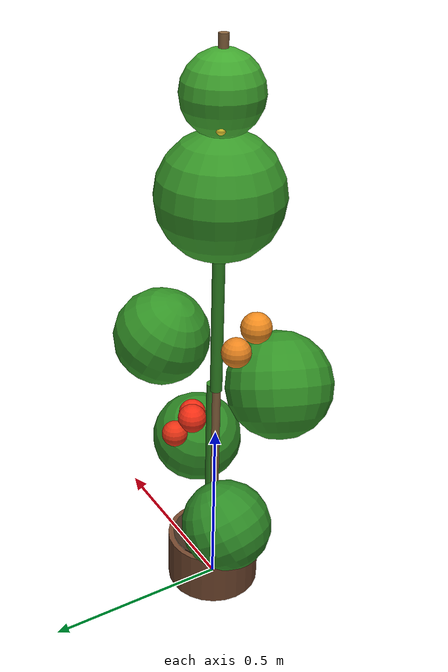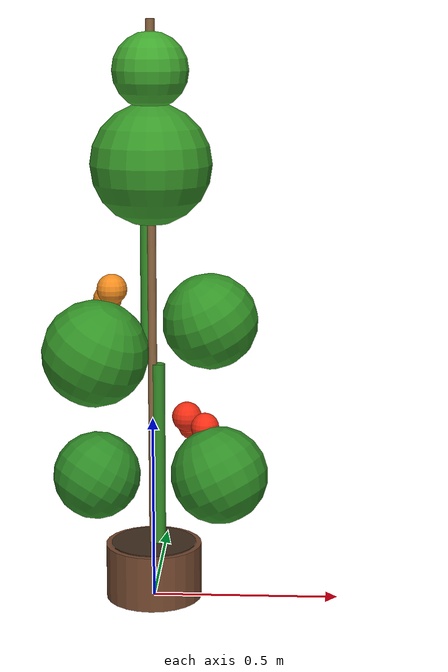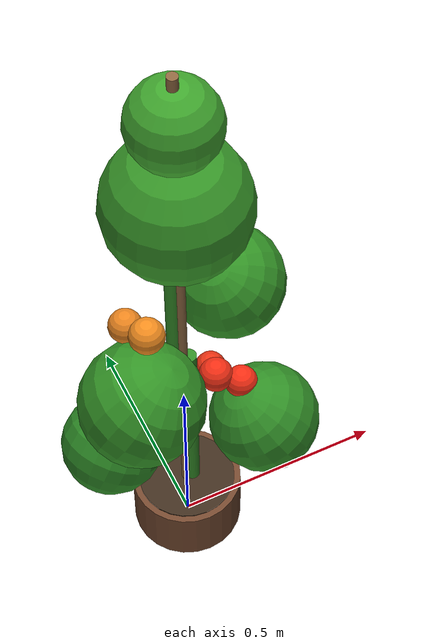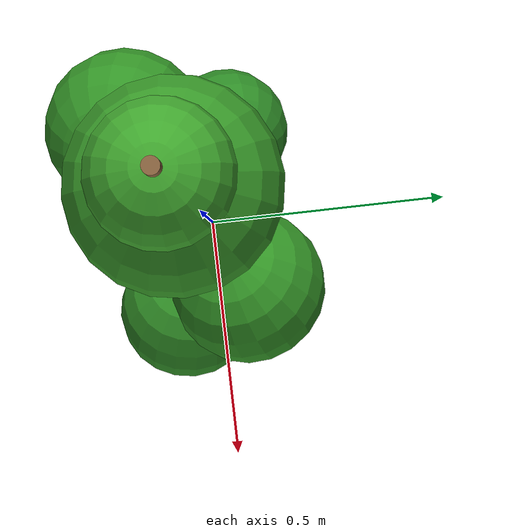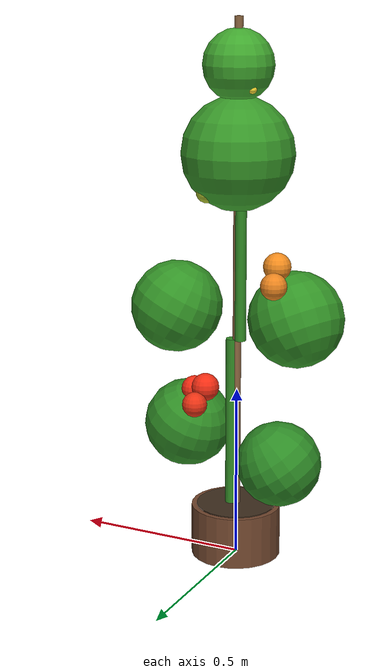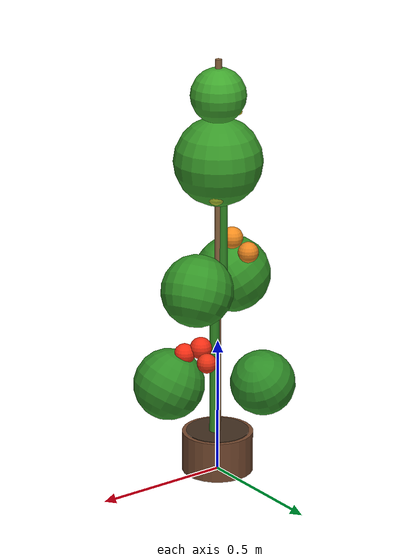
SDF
<?xml version="1.0"?>
<sdf version="1.10">
  <model name="tomato_plant">
    <static>true</static>

    <!-- ── Clay/plastic pot ────────────────────────────────────────── -->
    <link name="pot">
      <pose>0 0 0.075 0 0 0</pose>
      <visual name="v"><geometry><cylinder><radius>0.13</radius><length>0.15</length></cylinder></geometry>
        <material>
          <ambient>0.30 0.20 0.13 1</ambient>
          <diffuse>0.45 0.28 0.18 1</diffuse>
          <specular>0.10 0.05 0.03 1</specular>
        </material>
      </visual>
      <collision name="c"><geometry><cylinder><radius>0.13</radius><length>0.15</length></cylinder></geometry></collision>
    </link>

    <!-- Soil top in the pot -->
    <link name="pot_soil">
      <pose>0 0 0.148 0 0 0</pose>
      <visual name="v"><geometry><cylinder><radius>0.115</radius><length>0.01</length></cylinder></geometry>
        <material>
          <ambient>0.18 0.13 0.08 1</ambient>
          <diffuse>0.25 0.18 0.12 1</diffuse>
        </material>
      </visual>
    </link>

    <!-- ── Wooden support stake (the cane real tomato vines climb) ── -->
    <link name="stake">
      <pose>0 0 0.85 0 0 0</pose>
      <visual name="v"><geometry><cylinder><radius>0.012</radius><length>1.4</length></cylinder></geometry>
        <material>
          <ambient>0.35 0.25 0.15 1</ambient>
          <diffuse>0.55 0.40 0.25 1</diffuse>
        </material>
      </visual>
      <collision name="c"><geometry><cylinder><radius>0.012</radius><length>1.4</length></cylinder></geometry></collision>
    </link>

    <!-- ── Vine stem segments (slightly offset to suggest climbing) ── -->
    <link name="stem_lower">
      <pose>0.015 0 0.40 0 0 0</pose>
      <visual name="v"><geometry><cylinder><radius>0.018</radius><length>0.50</length></cylinder></geometry>
        <material><ambient>0.14 0.35 0.10 1</ambient><diffuse>0.20 0.55 0.15 1</diffuse></material>
      </visual>
    </link>
    <link name="stem_mid">
      <pose>-0.015 0.010 0.85 0 0 0</pose>
      <visual name="v"><geometry><cylinder><radius>0.016</radius><length>0.40</length></cylinder></geometry>
        <material><ambient>0.14 0.35 0.10 1</ambient><diffuse>0.20 0.55 0.15 1</diffuse></material>
      </visual>
    </link>
    <link name="stem_top">
      <pose>0.012 -0.010 1.20 0 0 0</pose>
      <visual name="v"><geometry><cylinder><radius>0.013</radius><length>0.30</length></cylinder></geometry>
        <material><ambient>0.16 0.40 0.12 1</ambient><diffuse>0.22 0.60 0.16 1</diffuse></material>
      </visual>
    </link>

    <!-- ── Leaf clusters at 4 heights (flattened spheres = ellipsoids) ─ -->
    <link name="leaves_low_l">
      <pose>-0.16 0.06 0.32 0 0.6 0.4</pose>
      <visual name="v"><geometry><sphere><radius>0.12</radius></sphere></geometry>
        <material><ambient>0.12 0.35 0.10 1</ambient><diffuse>0.18 0.55 0.15 1</diffuse></material>
      </visual>
    </link>
    <link name="leaves_low_r">
      <pose>0.18 -0.05 0.36 0 -0.5 -0.3</pose>
      <visual name="v"><geometry><sphere><radius>0.13</radius></sphere></geometry>
        <material><ambient>0.13 0.36 0.10 1</ambient><diffuse>0.19 0.56 0.15 1</diffuse></material>
      </visual>
    </link>
    <link name="leaves_mid_l">
      <pose>-0.14 -0.10 0.70 0 0.5 -0.4</pose>
      <visual name="v"><geometry><sphere><radius>0.14</radius></sphere></geometry>
        <material><ambient>0.13 0.38 0.10 1</ambient><diffuse>0.20 0.58 0.15 1</diffuse></material>
      </visual>
    </link>
    <link name="leaves_mid_r">
      <pose>0.15 0.08 0.75 0 -0.5 0.5</pose>
      <visual name="v"><geometry><sphere><radius>0.13</radius></sphere></geometry>
        <material><ambient>0.13 0.38 0.10 1</ambient><diffuse>0.20 0.58 0.15 1</diffuse></material>
      </visual>
    </link>
    <link name="leaves_high">
      <pose>0.00 0.00 1.18 0 0 0</pose>
      <visual name="v"><geometry><sphere><radius>0.16</radius></sphere></geometry>
        <material><ambient>0.14 0.40 0.11 1</ambient><diffuse>0.22 0.60 0.16 1</diffuse></material>
      </visual>
    </link>
    <link name="leaves_top">
      <pose>0.00 0.00 1.42 0 0 0</pose>
      <visual name="v"><geometry><sphere><radius>0.10</radius></sphere></geometry>
        <material><ambient>0.16 0.45 0.13 1</ambient><diffuse>0.25 0.65 0.18 1</diffuse></material>
      </visual>
    </link>

    <!-- ── Fruit cluster 1: lower (ripe red) ───────────────────────── -->
    <link name="fruit_r1a"><pose> 0.09 0.02 0.50 0 0 0</pose>
      <visual name="v"><geometry><sphere><radius>0.040</radius></sphere></geometry>
        <material><ambient>0.75 0.10 0.05 1</ambient><diffuse>0.95 0.18 0.08 1</diffuse><specular>0.5 0.1 0.1 1</specular></material>
      </visual>
      <collision name="c"><geometry><sphere><radius>0.040</radius></sphere></geometry></collision>
    </link>
    <link name="fruit_r1b"><pose> 0.14 -0.01 0.48 0 0 0</pose>
      <visual name="v"><geometry><sphere><radius>0.038</radius></sphere></geometry>
        <material><ambient>0.78 0.10 0.05 1</ambient><diffuse>0.97 0.18 0.08 1</diffuse><specular>0.5 0.1 0.1 1</specular></material>
      </visual>
      <collision name="c"><geometry><sphere><radius>0.038</radius></sphere></geometry></collision>
    </link>
    <link name="fruit_r1c"><pose> 0.10 0.07 0.46 0 0 0</pose>
      <visual name="v"><geometry><sphere><radius>0.036</radius></sphere></geometry>
        <material><ambient>0.72 0.12 0.05 1</ambient><diffuse>0.92 0.20 0.08 1</diffuse><specular>0.5 0.1 0.1 1</specular></material>
      </visual>
      <collision name="c"><geometry><sphere><radius>0.036</radius></sphere></geometry></collision>
    </link>

    <!-- ── Fruit cluster 2: middle (turning — orange) ──────────────── -->
    <link name="fruit_t1"><pose>-0.10 -0.05 0.86 0 0 0</pose>
      <visual name="v"><geometry><sphere><radius>0.040</radius></sphere></geometry>
        <material><ambient>0.78 0.40 0.08 1</ambient><diffuse>0.95 0.55 0.12 1</diffuse><specular>0.4 0.2 0.1 1</specular></material>
      </visual>
      <collision name="c"><geometry><sphere><radius>0.040</radius></sphere></geometry></collision>
    </link>
    <link name="fruit_t2"><pose>-0.12 0.02 0.82 0 0 0</pose>
      <visual name="v"><geometry><sphere><radius>0.038</radius></sphere></geometry>
        <material><ambient>0.75 0.38 0.08 1</ambient><diffuse>0.92 0.52 0.12 1</diffuse><specular>0.4 0.2 0.1 1</specular></material>
      </visual>
      <collision name="c"><geometry><sphere><radius>0.038</radius></sphere></geometry></collision>
    </link>

    <!-- ── Fruit cluster 3: upper (unripe — green-yellow) ──────────── -->
    <link name="fruit_u1"><pose> 0.09 -0.05 1.12 0 0 0</pose>
      <visual name="v"><geometry><sphere><radius>0.035</radius></sphere></geometry>
        <material><ambient>0.55 0.62 0.12 1</ambient><diffuse>0.72 0.78 0.20 1</diffuse><specular>0.2 0.2 0.1 1</specular></material>
      </visual>
      <collision name="c"><geometry><sphere><radius>0.035</radius></sphere></geometry></collision>
    </link>
    <link name="fruit_u2"><pose> 0.06 0.07 1.08 0 0 0</pose>
      <visual name="v"><geometry><sphere><radius>0.032</radius></sphere></geometry>
        <material><ambient>0.50 0.60 0.10 1</ambient><diffuse>0.68 0.76 0.18 1</diffuse><specular>0.2 0.2 0.1 1</specular></material>
      </visual>
      <collision name="c"><geometry><sphere><radius>0.032</radius></sphere></geometry></collision>
    </link>

    <!-- ── Yellow flowers (very top) — visual cue that the plant is still growing ─ -->
    <link name="flower_1"><pose>-0.06 0.04 1.36 0 0 0</pose>
      <visual name="v"><geometry><sphere><radius>0.012</radius></sphere></geometry>
        <material><ambient>0.92 0.78 0.15 1</ambient><diffuse>1.0 0.88 0.20 1</diffuse></material>
      </visual>
    </link>
    <link name="flower_2"><pose>0.05 -0.05 1.40 0 0 0</pose>
      <visual name="v"><geometry><sphere><radius>0.012</radius></sphere></geometry>
        <material><ambient>0.92 0.78 0.15 1</ambient><diffuse>1.0 0.88 0.20 1</diffuse></material>
      </visual>
    </link>

    <!-- ── Joints anchoring everything to the pot ──────────────────── -->
    <joint name="j_stake"   type="fixed"><parent>pot</parent><child>stake</child></joint>
    <joint name="j_soil"    type="fixed"><parent>pot</parent><child>pot_soil</child></joint>
    <joint name="j_stem_l"  type="fixed"><parent>stake</parent><child>stem_lower</child></joint>
    <joint name="j_stem_m"  type="fixed"><parent>stake</parent><child>stem_mid</child></joint>
    <joint name="j_stem_t"  type="fixed"><parent>stake</parent><child>stem_top</child></joint>
    <joint name="j_ll_l"    type="fixed"><parent>stake</parent><child>leaves_low_l</child></joint>
    <joint name="j_ll_r"    type="fixed"><parent>stake</parent><child>leaves_low_r</child></joint>
    <joint name="j_lm_l"    type="fixed"><parent>stake</parent><child>leaves_mid_l</child></joint>
    <joint name="j_lm_r"    type="fixed"><parent>stake</parent><child>leaves_mid_r</child></joint>
    <joint name="j_lh"      type="fixed"><parent>stake</parent><child>leaves_high</child></joint>
    <joint name="j_lt"      type="fixed"><parent>stake</parent><child>leaves_top</child></joint>
    <joint name="j_r1a"     type="fixed"><parent>stake</parent><child>fruit_r1a</child></joint>
    <joint name="j_r1b"     type="fixed"><parent>stake</parent><child>fruit_r1b</child></joint>
    <joint name="j_r1c"     type="fixed"><parent>stake</parent><child>fruit_r1c</child></joint>
    <joint name="j_t1"      type="fixed"><parent>stake</parent><child>fruit_t1</child></joint>
    <joint name="j_t2"      type="fixed"><parent>stake</parent><child>fruit_t2</child></joint>
    <joint name="j_u1"      type="fixed"><parent>stake</parent><child>fruit_u1</child></joint>
    <joint name="j_u2"      type="fixed"><parent>stake</parent><child>fruit_u2</child></joint>
    <joint name="j_f1"      type="fixed"><parent>stake</parent><child>flower_1</child></joint>
    <joint name="j_f2"      type="fixed"><parent>stake</parent><child>flower_2</child></joint>

  </model>
</sdf>
